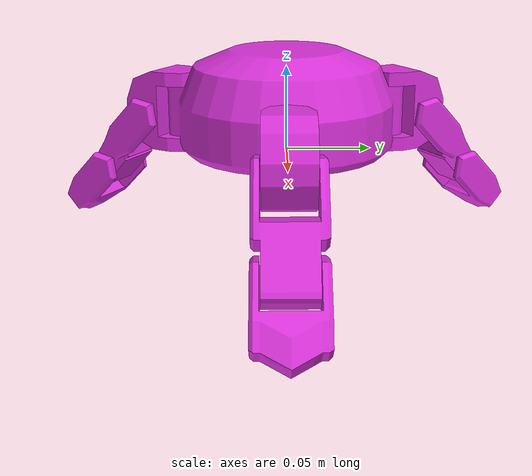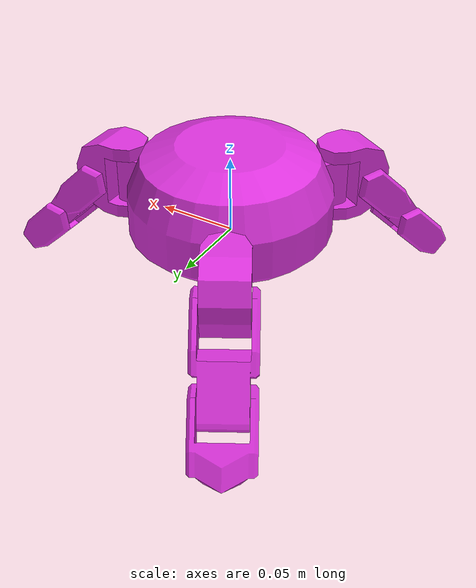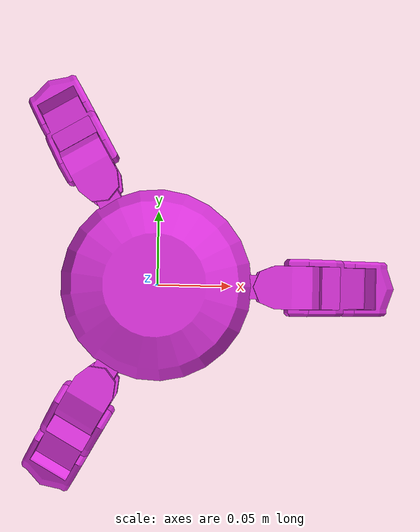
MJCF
<mujoco model="pet">

  <compiler assetdir="meshes" angle="degree"/>
  <size memory="5M"/>

  <visual>
    <map znear="0.1" zfar="1000 "/>
    <quality shadowsize="8192"/>
  </visual>

  <option timestep="0.005"/>

  <default>
      <mesh maxhullvert="32"/>
      <default class="servo_joint">
          <joint type="hinge" damping="1.084" armature="0.045" frictionloss="0.03" limited="true"/>
      </default>
      <default class="servo_actuator">
        <position kp="21.1" ctrlrange="-1.570796 1.570796" forcerange="-5 5"/>
      </default>
      <default class="main_vis">
        <geom type="mesh"
              contype="0" conaffinity="0"
              group="0"/>
      </default>
      <default class="main_col">
          <geom type="mesh" solref=".004 1"
           contype="1" conaffinity="1"
           condim="1" friction=".7"
           group="2"/>
      </default>
  </default>
  <asset>
      <material name="white" rgba="1 1 1 1.0"/>
      <mesh file="meshes/part_foot2.stl"/>
      <mesh file="meshes/part_hip3.stl"/>
      <mesh file="meshes/part_hip1.stl"/>
      <mesh file="meshes/part_leg1.stl"/>
      <mesh file="meshes/part_leg2.stl"/>
      <mesh file="meshes/part_hip2.stl"/>
      <mesh file="meshes/part_leg3.stl"/>
      <mesh file="meshes/part_foot3.stl"/>
      <mesh file="meshes/part_body.stl"/>
      <mesh file="meshes/part_foot1.stl"/>
  </asset>
  <worldbody>
    <body name="part_body" pos="0.00000e+00 0.00000e+00 0.00000e+00" quat="1.00000e+00 0.00000e+00 0.00000e+00 0.00000e+00" >
      <inertial pos="-4.70549e-07 2.07047e-06 2.65300e-02" mass="8.50114e-01" fullinertia="1.05431e-03 1.05536e-03 1.66754e-03 -3.18416e-13 -3.72046e-09 4.85580e-08"/>
      <site name="body_site" pos="0.00000e+00 0.00000e+00 0.00000e+00" quat="1.00000e+00 0.00000e+00 0.00000e+00 0.00000e+00" size="0.01" type="sphere" rgba="1 0 0 1"/>
      <camera name="back" pos="-3 0 1" xyaxes="0 -1 0 1 0 2" mode="trackcom"/>
      <camera name="side" pos="0 -3 1" xyaxes="1 0 0 0 1 2" mode="trackcom"/>
      <freejoint/>
      <geom class="main_vis" mesh="part_body" rgba="0.8666666666666667 0.2 0.8666666666666667 1.0"/>
      <geom class="main_col" mesh="part_body"/>
      <body name="part_hip1" pos="7.00000e-02 0.00000e+00 -2.00000e-05" quat="7.07107e-01 0.00000e+00 0.00000e+00 7.07107e-01" >
        <inertial pos="5.40009e-10 -2.10724e-02 1.60500e-02" mass="4.38325e-02" fullinertia="1.45068e-05 1.27650e-05 7.40980e-06 -5.48854e-13 5.81136e-13 -1.85574e-12"/>
        <geom class="main_vis" mesh="part_hip1" rgba="0.8666666666666667 0.2 0.8666666666666667 1.0"/>
        <geom class="main_col" mesh="part_hip1"/>
        <joint name="revolute_body_hip1_0_0_1" axis="0 0 1" range="-9.00000e+01 9.00000e+01" class="servo_joint"/>
        <body name="part_leg1" pos="-1.43950e-02 -2.44500e-02 1.05000e-02" quat="6.53281e-01 2.70598e-01 6.53281e-01 2.70598e-01" >
          <inertial pos="-1.36319e-03 -3.64237e-02 1.43500e-02" mass="3.66789e-02" fullinertia="1.72637e-05 5.92550e-06 1.36232e-05 8.18375e-07 -3.47931e-13 -7.84468e-12"/>
          <geom class="main_vis" mesh="part_leg1" rgba="0.8666666666666667 0.2 0.8666666666666667 1.0"/>
          <geom class="main_col" mesh="part_leg1"/>
          <joint name="revolute_hip1_leg1_0_0_1" axis="0 0 1" range="-9.00000e+01 9.00000e+01" class="servo_joint"/>
          <body name="part_foot1" pos="1.00000e-03 -5.30000e-02 4.98000e-03" quat="1.00000e+00 0.00000e+00 0.00000e+00 0.00000e+00" >
            <inertial pos="-2.38889e-10 -2.40969e-02 9.25000e-03" mass="2.43898e-02" fullinertia="7.85378e-06 4.69466e-06 4.83017e-06 1.57398e-13 2.12119e-14 -1.86238e-12"/>
            <geom class="main_vis" mesh="part_foot1" rgba="0.8666666666666667 0.2 0.8666666666666667 1.0"/>
            <geom class="main_col" mesh="part_foot1"/>
            <joint name="revolute_leg1_foot1_0_0_1" axis="0 0 1" range="-9.00000e+01 9.00000e+01" class="servo_joint"/>
          </body>
        </body>
      </body>
      <body name="part_hip2" pos="-3.50000e-02 6.06218e-02 -2.00000e-05" quat="2.58819e-01 0.00000e+00 0.00000e+00 -9.65926e-01" >
        <inertial pos="5.40009e-10 -2.10724e-02 1.60500e-02" mass="4.38325e-02" fullinertia="1.45068e-05 1.27650e-05 7.40980e-06 -5.48854e-13 5.81136e-13 -1.85574e-12"/>
        <geom class="main_vis" mesh="part_hip2" rgba="0.8666666666666667 0.2 0.8666666666666667 1.0"/>
        <geom class="main_col" mesh="part_hip2"/>
        <joint name="revolute_body_hip2_0_0_1" axis="0 0 1" range="-9.00000e+01 9.00000e+01" class="servo_joint"/>
        <body name="part_leg2" pos="-1.43950e-02 -2.44500e-02 1.05000e-02" quat="6.53281e-01 2.70598e-01 6.53281e-01 2.70598e-01" >
          <inertial pos="-1.36319e-03 -3.64237e-02 1.43500e-02" mass="3.66789e-02" fullinertia="1.72637e-05 5.92550e-06 1.36232e-05 8.18375e-07 -3.47931e-13 -7.84468e-12"/>
          <geom class="main_vis" mesh="part_leg2" rgba="0.8666666666666667 0.2 0.8666666666666667 1.0"/>
          <geom class="main_col" mesh="part_leg2"/>
          <joint name="revolute_hip2_leg2_0_0_1" axis="0 0 1" range="-9.00000e+01 9.00000e+01" class="servo_joint"/>
          <body name="part_foot2" pos="1.00000e-03 -5.30000e-02 4.98000e-03" quat="1.00000e+00 -0.00000e+00 -0.00000e+00 -0.00000e+00" >
            <inertial pos="-2.38889e-10 -2.40969e-02 9.25000e-03" mass="2.43898e-02" fullinertia="7.85378e-06 4.69466e-06 4.83017e-06 1.57398e-13 2.12119e-14 -1.86238e-12"/>
            <geom class="main_vis" mesh="part_foot2" rgba="0.8666666666666667 0.2 0.8666666666666667 1.0"/>
            <geom class="main_col" mesh="part_foot2"/>
            <joint name="revolute_leg2_foot2_0_0_1" axis="0 0 1" range="-9.00000e+01 9.00000e+01" class="servo_joint"/>
          </body>
        </body>
      </body>
      <body name="part_hip3" pos="-3.50000e-02 -6.06218e-02 -2.00000e-05" quat="9.65926e-01 0.00000e+00 0.00000e+00 -2.58819e-01" >
        <inertial pos="5.40009e-10 -2.10724e-02 1.60500e-02" mass="4.38325e-02" fullinertia="1.45068e-05 1.27650e-05 7.40980e-06 -5.48854e-13 5.81136e-13 -1.85574e-12"/>
        <geom class="main_vis" mesh="part_hip3" rgba="0.8666666666666667 0.2 0.8666666666666667 1.0"/>
        <geom class="main_col" mesh="part_hip3"/>
        <joint name="revolute_body_hip3_0_0_1" axis="0 0 1" range="-9.00000e+01 9.00000e+01" class="servo_joint"/>
        <body name="part_leg3" pos="-1.43950e-02 -2.44500e-02 1.05000e-02" quat="6.53281e-01 2.70598e-01 6.53281e-01 2.70598e-01" >
          <inertial pos="-1.36319e-03 -3.64237e-02 1.43500e-02" mass="3.66789e-02" fullinertia="1.72637e-05 5.92550e-06 1.36232e-05 8.18375e-07 -3.47931e-13 -7.84468e-12"/>
          <geom class="main_vis" mesh="part_leg3" rgba="0.8666666666666667 0.2 0.8666666666666667 1.0"/>
          <geom class="main_col" mesh="part_leg3"/>
          <joint name="revolute_hip3_leg3_0_0_1" axis="0 0 1" range="-9.00000e+01 9.00000e+01" class="servo_joint"/>
          <body name="part_foot3" pos="1.00000e-03 -5.30000e-02 4.98000e-03" quat="1.00000e+00 0.00000e+00 0.00000e+00 0.00000e+00" >
            <inertial pos="-2.38889e-10 -2.40969e-02 9.25000e-03" mass="2.43898e-02" fullinertia="7.85378e-06 4.69466e-06 4.83017e-06 1.57398e-13 2.12119e-14 -1.86238e-12"/>
            <geom class="main_vis" mesh="part_foot3" rgba="0.8666666666666667 0.2 0.8666666666666667 1.0"/>
            <geom class="main_col" mesh="part_foot3"/>
            <joint name="revolute_leg3_foot3_0_0_1" axis="0 0 1" range="-9.00000e+01 9.00000e+01" class="servo_joint"/>
          </body>
        </body>
      </body>
    </body>
  </worldbody>
  <sensor>
    <accelerometer name="body" site="body_site" />
    <gyro name="body_gyro" site="body_site" />
  </sensor>
  <actuator>
    <position joint="revolute_body_hip1_0_0_1" class="servo_actuator"/>
    <position joint="revolute_hip1_leg1_0_0_1" class="servo_actuator"/>
    <position joint="revolute_leg1_foot1_0_0_1" class="servo_actuator"/>
    <position joint="revolute_body_hip2_0_0_1" class="servo_actuator"/>
    <position joint="revolute_hip2_leg2_0_0_1" class="servo_actuator"/>
    <position joint="revolute_leg2_foot2_0_0_1" class="servo_actuator"/>
    <position joint="revolute_body_hip3_0_0_1" class="servo_actuator"/>
    <position joint="revolute_hip3_leg3_0_0_1" class="servo_actuator"/>
    <position joint="revolute_leg3_foot3_0_0_1" class="servo_actuator"/>
  </actuator>
</mujoco>
